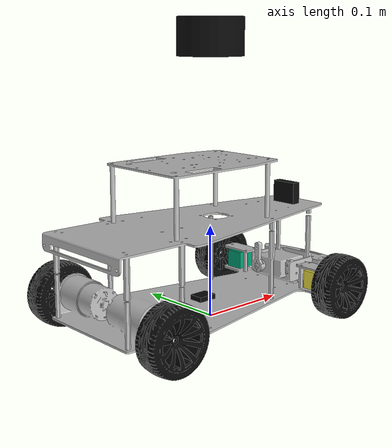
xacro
<?xml version="1.0"?>
<robot xmlns:xacro="http://www.ros.org/wiki/xacro"  name="robot">

    <xacro:arg name="hardware" default="false"/>
    <xacro:arg name="can_interface" default="vcan0"/>
    <xacro:arg name="enc_counts_per_rev" default="2464"/>

    <xacro:arg name="sim_lidar" default="2d"/>
    <xacro:arg name="sim_camera" default="true"/>

    <xacro:include filename="base.xacro"/>
    <xacro:include filename="sensors.xacro"/>
    <xacro:include filename="control.xacro"/>

</robot>

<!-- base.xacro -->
<robot xmlns:xacro="http://www.ros.org/wiki/xacro" name="base">

  <!-- Gazebo needs file:// paths, remote RViz needs package:// paths -->
  <xacro:if value="$(arg hardware)">
    <xacro:property name="mesh_prefix" value="package://ackermann_description"/>
  </xacro:if>
  <xacro:unless value="$(arg hardware)">
    <xacro:property name="mesh_prefix" value="file://$(find ackermann_description)"/>
  </xacro:unless>

  <!-- ====== PARAMETERS ====== -->
  <xacro:property name="track" value="0.18179"/>
  <xacro:property name="front_pivot_track" value="0.12"/>
  <xacro:property name="wheelbase" value="0.23529"/>
  <xacro:property name="pivot_wheel_offset_y" value="0.0325"/> <!-- Offset of wheel from fixed steering pivot -->
  <xacro:property name="wheel_offset_z" value="0.0131"/> <!-- Height of wheel above chasis -->

  <xacro:property name="wheel_radius" value="0.0325"/>
  <xacro:property name="wheel_width" value="0.026"/>
  <xacro:property name="wheel_mass" value="0.031"/>
  <xacro:property name="chassis_mass" value="0.328"/>

  <xacro:property name="chassis_inertia_ixx" value="0.03"/>
  <xacro:property name="chassis_inertia_iyy" value="0.03"/>
  <xacro:property name="chassis_inertia_izz" value="0.05"/>

  <xacro:property name="wheel_inertia_ixx" value="${1.0/12.0 * wheel_mass * (3*wheel_radius*wheel_radius + wheel_width*wheel_width)}"/>
  <xacro:property name="wheel_inertia_iyy" value="${0.5 * wheel_mass * wheel_radius * wheel_radius}"/>
  <xacro:property name="wheel_inertia_izz" value="${1.0/12.0 * wheel_mass * (3*wheel_radius*wheel_radius + wheel_width*wheel_width)}"/>

  <xacro:property name="steering_velocity_max" value="1.0"/>
  <xacro:property name="steering_max" value="0.286"/>

  <xacro:property name="wheel_effort_max" value="0.206"/> <!-- load torque in nm -->
  <xacro:property name="wheel_velocity_max" value="15.38"/> <!-- 0.5 m/s with r=0.0325m -->

  <!-- ====== MATERIALS ====== -->
  <material name="black">
    <color rgba="0.04 0.04 0.04 1.0"/>
  </material>
  <material name="grey">
    <color rgba="0.2 0.2 0.2 1.0"/>
  </material>
  <material name="off_white">
  <color rgba="0.75 0.75 0.75 1.0" />
</material>

  <!-- ==== BASE FOOTPRINT ====-->
  <link name="base_footprint"/>

  <joint name="base_joint" type="fixed">
    <parent link="base_footprint"/>
    <child link="base_link"/>
    <origin xyz="-0.13 0 ${(wheel_radius) - wheel_offset_z}" rpy="0 0 0"/>
  </joint>

  <!-- ====== BASE LINK ====== -->
  <link name="base_link">
    <visual>
      <geometry>
        <mesh filename="${mesh_prefix}/meshes/chasis.stl"/>
      </geometry>
      <material name="off_white"/>
      <origin xyz="0.13 0 0" rpy="1.570795 0 -1.570795"/>
    </visual>
    <collision>
      <geometry>
        <box size="0.34 0.155 0.155"/>
      </geometry>
      <origin xyz="0.131 0 0.075"/>
    </collision>
    <inertial>
      <mass value="${chassis_mass}"/>
      <origin xyz="0.13 0 0"/>
      <inertia ixx="${chassis_inertia_ixx}" ixy="0.0" ixz="0.0"
               iyy="${chassis_inertia_iyy}" iyz="0.0" izz="${chassis_inertia_izz}"/>
    </inertial>
  </link>
  <gazebo reference="base_link">
  </gazebo>

  <!-- ====== LINK MACRO ====== -->
  <xacro:macro name="wheel_link" params="name rotation">
    <link name="${name}">
      <visual>
        <geometry>
          <mesh filename="${mesh_prefix}/meshes/wheel.stl"/>
        </geometry>
        <material name="black"/>
        <origin xyz="0 0 0" rpy="0 0 ${rotation}"/>
      </visual>
      <collision>
        <geometry>
          <cylinder radius="${wheel_radius}" length="${wheel_width}"/>
        </geometry>
        <origin xyz="0 0 0" rpy="1.570795 0 0"/>
      </collision>
      <inertial>
        <mass value="${wheel_mass}"/>
        <inertia ixx="${wheel_inertia_ixx}" ixy="0.0" ixz="0.0"
                 iyy="${wheel_inertia_iyy}" iyz="0.0" izz="${wheel_inertia_izz}"/>
        <origin xyz="0 0 0" rpy="1.570795 0 0"/>
      </inertial>
    </link>
    <gazebo reference="${name}">
    </gazebo>
  </xacro:macro>

  <xacro:macro name="steering_link" params="name">
    <link name="${name}">
      <visual>
        <geometry>
          <box size="0.02 0.02 0.02"/>
        </geometry>
      </visual>
      <inertial>
        <mass value="0.001"/>
        <inertia ixx="0.01" ixy="0.0" ixz="0.0"
                 iyy="0.01" iyz="0.0" izz="0.01"/>
      </inertial>
    </link>
    <gazebo reference="${name}">
    </gazebo>
  </xacro:macro>

  <!-- ====== JOINT MACRO ====== -->
  <xacro:macro name="steering_joint" params="name parent child x y z">
    <joint name="${name}" type="revolute">
      <origin xyz="${x} ${y} ${z}" rpy="0 0 0"/>
      <parent link="${parent}"/>
      <child link="${child}"/>
      <axis xyz="0 0 1"/>
      <limit effort="1.0" lower="-${steering_max}" upper="${steering_max}" velocity="${steering_velocity_max}"/>
    </joint>
  </xacro:macro>

  <xacro:macro name="wheel_joint" params="name parent child x y z">
    <joint name="${name}" type="continuous">
      <origin xyz="${x} ${y} ${z}" rpy="0 0 0"/>
      <parent link="${parent}"/>
      <child link="${child}"/>
      <axis xyz="0 1 0"/>
      <limit effort="${wheel_effort_max}" velocity="${wheel_velocity_max}"/>
    </joint>
  </xacro:macro>

  <!-- ====== LINKS & JOINTS ====== -->

  <!-- Front steering -->
  <xacro:steering_link name="front_left_steering_link"/>
  <xacro:steering_link name="front_right_steering_link"/>
  <xacro:steering_joint name="front_left_steering_joint" parent="base_link" child="front_left_steering_link" x="${wheelbase}" y="${front_pivot_track / 2}" z="${wheel_offset_z}"/>
  <xacro:steering_joint name="front_right_steering_joint" parent="base_link" child="front_right_steering_link" x="${wheelbase}" y="-${front_pivot_track / 2}" z="${wheel_offset_z}"/>
  <!-- Front wheels -->
  <xacro:wheel_link name="front_left_wheel_link" rotation="-1.570795"/>
  <xacro:wheel_link name="front_right_wheel_link" rotation="1.570795"/>
  <xacro:wheel_joint name="front_left_wheel_joint" parent="front_left_steering_link" child="front_left_wheel_link" x="0" y="${pivot_wheel_offset_y}" z="0"/>
  <xacro:wheel_joint name="front_right_wheel_joint" parent="front_right_steering_link" child="front_right_wheel_link" x="0" y="-${pivot_wheel_offset_y}" z="0"/>
  <!-- Rear wheels -->
  <xacro:wheel_link name="rear_left_wheel_link" rotation="-1.570795"/>
  <xacro:wheel_link name="rear_right_wheel_link" rotation="1.570795"/>
  <xacro:wheel_joint name="rear_left_wheel_joint" parent="base_link" child="rear_left_wheel_link" x="0" y="${track / 2}" z="${wheel_offset_z}"/>
  <xacro:wheel_joint name="rear_right_wheel_joint" parent="base_link" child="rear_right_wheel_link" x="0" y="-${track / 2}" z="${wheel_offset_z}"/>

</robot>

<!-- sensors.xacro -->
<robot xmlns:xacro="http://www.ros.org/wiki/xacro">

    <!-- SIMULATION-ONLY SENSOR MODELLING                                        -->
    <!-- loads ackermann_hardware over CAN and no Gazebo plugin is ever read.    -->
    <!-- The LINKS and JOINTS, by contrast, are shared by both paths and define  -->
    <!-- the TF tree the real sensors publish into - do not gate those on       -->
    <!-- $(arg hardware) or the vehicle loses frames.                            -->
    <!-- Two args steer the simulated sensors (declared in robot.xacro):         -->
    <!--   sim_lidar  : 2d (default) | livox                                     -->
    <!--   sim_camera : true (default) | false                                   -->

    <!-- ====== CAMERA LINK ====== -->
    <link name="camera_link">
        <visual>
            <geometry>
                <box size="0.010 0.03 0.03"/>
            </geometry>
            <material name="black"/>
            <origin xyz="0 0 0" rpy="0 0 0"/>
        </visual>
        <collision>
            <geometry>
                <box size="0.010 0.03 0.03"/>
            </geometry>
        </collision>
        <inertial>
            <mass value="0.05"/>
            <inertia ixx="0.000001" ixy="0.0" ixz="0.0"
                    iyy="0.000001" iyz="0.0" izz="0.000001"/>
            <origin xyz="0 0 0" rpy="0 0 0"/>
        </inertial>
    </link>

    <!-- ====== CAMERA JOINT ====== -->
    <joint name="camera_joint" type="fixed">
        <parent link="base_link"/>
        <child link="camera_link"/>
        <origin xyz="0.25 0 0.099" rpy="0 0 0"/>
    </joint>

    <!-- ====== CAMERA OPTICAL LINK ====== -->
    <link name="camera_optical_frame"></link>

    <joint name="camera_optical_joint" type="fixed">
        <parent link="camera_link"/>
        <child link="camera_optical_frame"/>
        <origin xyz="0 0 0" rpy="${-pi/2} 0 ${-pi/2}"/>
    </joint>

    <!-- ====== CAMERA GAZEBO (SIMULATION ONLY) ======= -->
    <xacro:if value="$(arg sim_camera)">
        <xacro:property name="sim_camera_width" value="640"/>
        <xacro:property name="sim_camera_height" value="360"/>
        <xacro:property name="sim_camera_rate" value="10"/>

        <gazebo reference="camera_link">
                <sensor name="camera" type="camera">
                    <always_on>1</always_on>
                    <update_rate>${sim_camera_rate}</update_rate>
                    <visualize>false</visualize>
                    <camera>
                        <horizontal_fov>1.3962634</horizontal_fov>
                        <image>
                            <width>${sim_camera_width}</width>
                            <height>${sim_camera_height}</height>
                            <format>R8G8B8</format>
                        </image>
                        <clip>
                            <near>0.1</near>
                            <far>15</far>
                        </clip>
                        <noise>
                            <type>gaussian</type>
                            <mean>0.0</mean>
                            <stddev>0.007</stddev>
                        </noise>
                    </camera>
                    <plugin name="camera_controller" filename="libgazebo_ros_camera.so">
                        <ros>
                            <remapping>~/image_raw:=camera/image_raw</remapping>
                            <remapping>~/camera_info:=camera/camera_info</remapping>
                        </ros>
                        <camera_name>camera</camera_name>
                        <!-- Match your actual optical link name -->
                        <frame_name>camera_optical_frame</frame_name>
                        <hack_baseline>0.0</hack_baseline>
                    </plugin>
                </sensor>
        </gazebo>
    </xacro:if>

    <!-- ====== LIDAR LINK ====== -->
    <link name="lidar_link">
        <visual>
            <geometry>
                <cylinder radius="0.035" length="0.04"/>
            </geometry>
            <material name="black"/>
            <origin xyz="0 0 0" rpy="0 0 0"/>
        </visual>
        <collision>
            <geometry>
                <cylinder radius="0.035" length="0.04"/>
            </geometry>
        </collision>
        <inertial>
            <mass value="0.17"/>
            <inertia ixx="0.000075" ixy="0.0" ixz="0.0"
                    iyy="0.000075" iyz="0.0" izz="0.0001"/>
            <origin xyz="0 0 0" rpy="0 0 0"/>
        </inertial>
    </link>

    <!-- ====== LIDAR JOINT ====== -->
    <joint name="lidar_joint" type="fixed">
        <parent link="base_link"/>
        <child link="lidar_link"/>
        <origin xyz="0.13 0 0.279" rpy="0 0 0"/>
    </joint>

    <link name="livox_frame"/>

    <joint name="livox_imu_joint" type="fixed">
        <parent link="lidar_link"/>
        <child link="livox_frame"/>
        <origin xyz="0 0 0" rpy="0 0 0"/>
    </joint>

    <!-- ====== LIDAR GAZEBO (SIMULATION ONLY) ======= -->
    <xacro:unless value="$(arg hardware)">

        <xacro:if value="${'$(arg sim_lidar)' == '2d'}">
            <gazebo reference="lidar_link">
                <sensor name="lidar" type="ray">
                    <pose>0 0 0 0 0 0</pose>
                    <always_on>1</always_on>
                    <update_rate>10</update_rate>
                    <visualize>false</visualize>
                    <ray>
                        <scan>
                            <horizontal>
                                <samples>360</samples>
                                <resolution>1.0</resolution>
                                <min_angle>-3.14159</min_angle>
                                <max_angle>3.14159</max_angle>
                            </horizontal>
                        </scan>
                        <range>
                            <min>0.2</min>
                            <max>15.0</max>
                            <resolution>0.01</resolution>
                        </range>
                        <noise>
                            <type>gaussian</type>
                            <mean>0.0</mean>
                            <stddev>0.01</stddev>
                        </noise>
                    </ray>
                    <plugin name="laser_controller" filename="libgazebo_ros_ray_sensor.so">
                        <ros>
                            <remapping>~/out:=scan</remapping>
                        </ros>
                        <output_type>sensor_msgs/LaserScan</output_type>
                        <frame_name>lidar_link</frame_name>
                    </plugin>
                </sensor>
            </gazebo>
        </xacro:if>

        <xacro:if value="${'$(arg sim_lidar)' == 'livox'}">
            <xacro:include filename="$(find ros2_livox_simulation)/urdf/mid360.xacro"/>

            <xacro:mid360 name="livox" parent="base_link" topic="mid360">
                <origin xyz="0.13 0 0.279" rpy="0 0 0"/>
            </xacro:mid360>
        </xacro:if>

    </xacro:unless>

    <!-- ====== IMU LINK ====== -->
    <link name="imu_link">
        <visual>
            <geometry>
                <box size="0.02 0.015 0.005"/>
            </geometry>
            <material name="black"/>
            <origin xyz="0 0 0" rpy="0 0 0"/>
        </visual>
        <collision>
            <geometry>
                <box size="0.02 0.015 0.005"/>
            </geometry>
        </collision>
        <inertial>
            <mass value="0.01"/>
            <inertia ixx="0.000001" ixy="0.0" ixz="0.0"
                    iyy="0.000001" iyz="0.0" izz="0.000001"/>
            <origin xyz="0 0 0" rpy="0 0 0"/>
        </inertial>
    </link>

    <!-- ====== IMU JOINT ====== -->
    <joint name="imu_joint" type="fixed">
        <parent link="base_link"/>
        <child link="imu_link"/>
        <origin xyz="0.092 -0.03 0.018" rpy="0 0 0"/>
    </joint>

    <!-- ====== IMU GAZEBO  ====== -->
    <gazebo reference="imu_link">
        <sensor name="imu_sensor" type="imu">
            <always_on>true</always_on>
            <update_rate>100</update_rate>
            <visualize>false</visualize>
            <plugin name="imu_plugin" filename="libgazebo_ros_imu_sensor.so">
                <ros>
                    <remapping>~/out:=imu/data</remapping>
                </ros>
                <frame_name>imu_link</frame_name>
                <initial_orientation_as_reference>false</initial_orientation_as_reference>
            </plugin>
        </sensor>
    </gazebo>

</robot>
